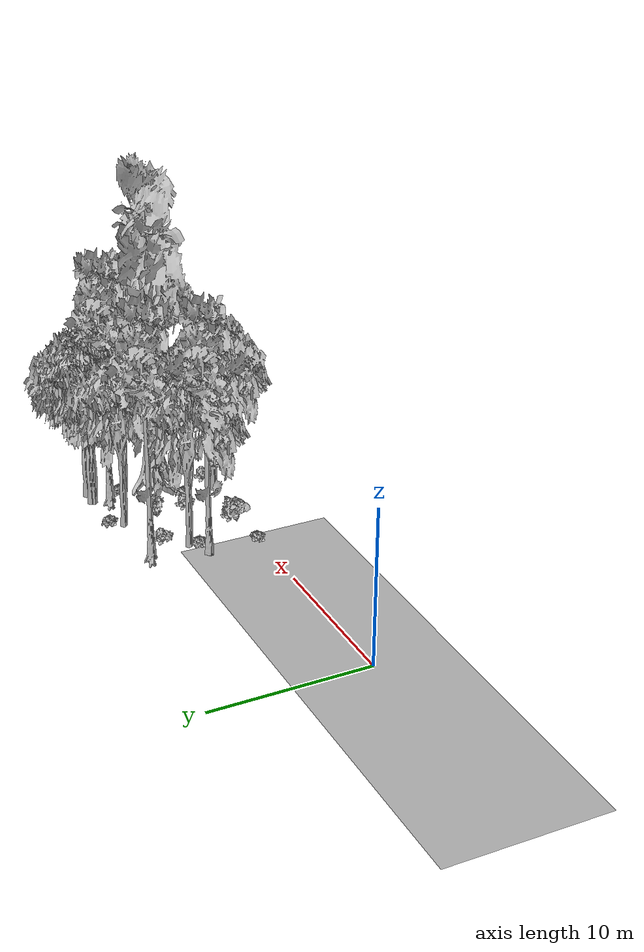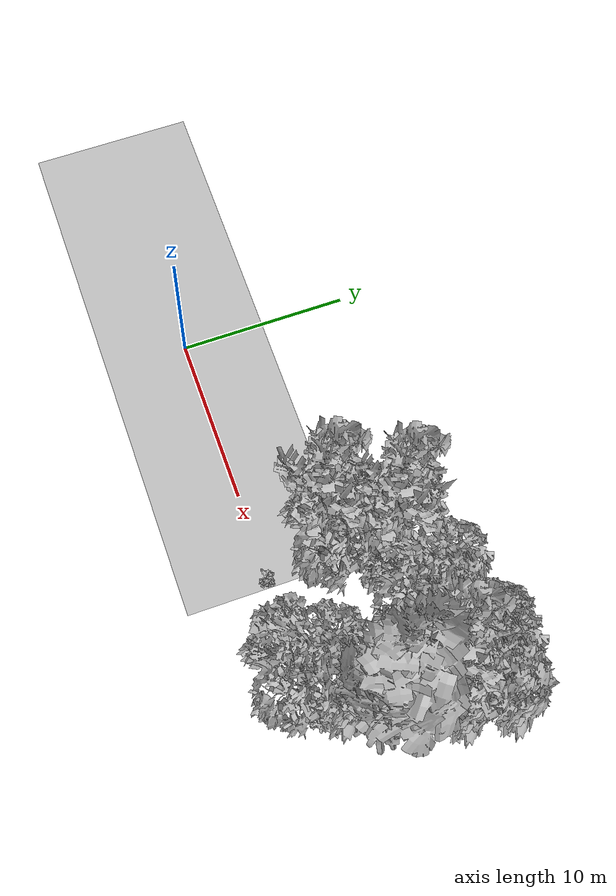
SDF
<sdf version="1.7">
 <world name="default">
  <model name="ground_plane">
   <static>1</static>
   <link name="link">
    <collision name="collision">
     <geometry><plane><normal>0 0 1</normal><size>100 100</size></plane></geometry>
     <surface><contact><ode><min_depth>0.01</min_depth><max_vel>0</max_vel></ode></contact></surface>
    </collision>
    <visual name="grass">
     <cast_shadows>0</cast_shadows>
     <geometry>
      <mesh>
       <scale>0.5814285714285714 0.18142857142857144 0.1</scale>
       <uri>file://grass_plane/meshes/grass_plane.dae</uri>
      </mesh>
     </geometry>
    </visual>
   </link>
  </model>
  <model name="Tree 26">
   <static>1</static>
   <pose>14.767270386368914 3.3967840840657146 0 1.57079 -0 0</pose>
   <link name="link">
    <collision name="collision">
     <geometry><mesh><scale>3.5 5 3.5</scale><uri>model://tree_9/meshes/tree_9.obj</uri></mesh></geometry>
    </collision>
    <visual name="visual">
     <geometry><mesh><scale>3.5 5 3.5</scale><uri>model://tree_9/meshes/tree_9.obj</uri></mesh></geometry>
    </visual>
   </link>
  </model>
  <model name="Tree 77">
   <static>1</static>
   <pose>16.134451558894625 6.639934069329669 0 1.57079 -0 0</pose>
   <link name="link">
    <collision name="collision">
     <geometry><mesh><scale>3.5 5 3.5</scale><uri>model://tree_9/meshes/tree_9.obj</uri></mesh></geometry>
    </collision>
    <visual name="visual">
     <geometry><mesh><scale>3.5 5 3.5</scale><uri>model://tree_9/meshes/tree_9.obj</uri></mesh></geometry>
    </visual>
   </link>
  </model>
  <model name="Tree 146">
   <static>1</static>
   <pose>23.800714505289278 6.454567991375427 0 1.57079 -0 0</pose>
   <link name="link">
    <collision name="collision">
     <geometry><mesh><scale>3.5 5 3.5</scale><uri>model://tree_9/meshes/tree_9.obj</uri></mesh></geometry>
    </collision>
    <visual name="visual">
     <geometry><mesh><scale>3.5 5 3.5</scale><uri>model://tree_9/meshes/tree_9.obj</uri></mesh></geometry>
    </visual>
   </link>
  </model>
  <model name="Tree 168">
   <static>1</static>
   <pose>22.00422431425727 -0.09050226162383801 0 1.57079 -0 0</pose>
   <link name="link">
    <collision name="collision">
     <geometry><mesh><scale>3.5 5 3.5</scale><uri>model://tree_2/meshes/tree_2.obj</uri></mesh></geometry>
    </collision>
    <visual name="visual">
     <geometry><mesh><scale>3.5 5 3.5</scale><uri>model://tree_2/meshes/tree_2.obj</uri></mesh></geometry>
    </visual>
   </link>
  </model>
  <model name="Tree 173">
   <static>1</static>
   <pose>20.04253823778268 6.875947119614427 0 1.57079 -0 0</pose>
   <link name="link">
    <collision name="collision">
     <geometry><mesh><scale>3.5 5 3.5</scale><uri>model://tree_2/meshes/tree_2.obj</uri></mesh></geometry>
    </collision>
    <visual name="visual">
     <geometry><mesh><scale>3.5 5 3.5</scale><uri>model://tree_2/meshes/tree_2.obj</uri></mesh></geometry>
    </visual>
   </link>
  </model>
  <model name="Tree 195">
   <static>1</static>
   <pose>23.5751971295752 7.575776021164746 0 1.57079 -0 0</pose>
   <link name="link">
    <collision name="collision">
     <geometry><mesh><scale>3.5 5 3.5</scale><uri>model://tree_2/meshes/tree_2.obj</uri></mesh></geometry>
    </collision>
    <visual name="visual">
     <geometry><mesh><scale>3.5 5 3.5</scale><uri>model://tree_2/meshes/tree_2.obj</uri></mesh></geometry>
    </visual>
   </link>
  </model>
  <model name="Tree 202">
   <static>1</static>
   <pose>15.995405987543492 4.152246791756227 0 1.57079 -0 0</pose>
   <link name="link">
    <collision name="collision">
     <geometry><mesh><scale>3.5 5 3.5</scale><uri>model://tree_2/meshes/tree_2.obj</uri></mesh></geometry>
    </collision>
    <visual name="visual">
     <geometry><mesh><scale>3.5 5 3.5</scale><uri>model://tree_2/meshes/tree_2.obj</uri></mesh></geometry>
    </visual>
   </link>
  </model>
  <model name="Tree 252">
   <static>1</static>
   <pose>24.118869296567027 5.315272429371337 0 1.57079 -0 0</pose>
   <link name="link">
    <collision name="collision">
     <geometry><mesh><scale>3.5 5 3.5</scale><uri>model://tree_2/meshes/tree_2.obj</uri></mesh></geometry>
    </collision>
    <visual name="visual">
     <geometry><mesh><scale>3.5 5 3.5</scale><uri>model://tree_2/meshes/tree_2.obj</uri></mesh></geometry>
    </visual>
   </link>
  </model>
  <model name="Tree 275">
   <static>1</static>
   <pose>24.627454609023857 7.707528272136287 0 1.57079 -0 0</pose>
   <link name="link">
    <collision name="collision">
     <geometry><mesh><scale>3.5 5 3.5</scale><uri>model://tree_2/meshes/tree_2.obj</uri></mesh></geometry>
    </collision>
    <visual name="visual">
     <geometry><mesh><scale>3.5 5 3.5</scale><uri>model://tree_2/meshes/tree_2.obj</uri></mesh></geometry>
    </visual>
   </link>
  </model>
  <model name="Tree 288">
   <static>1</static>
   <pose>24.76924334572864 3.0639531141417926 0 1.57079 -0 0</pose>
   <link name="link">
    <collision name="collision">
     <geometry><mesh><scale>3.5 5 3.5</scale><uri>model://tree_4/meshes/tree_4.obj</uri></mesh></geometry>
    </collision>
    <visual name="visual">
     <geometry><mesh><scale>3.5 5 3.5</scale><uri>model://tree_4/meshes/tree_4.obj</uri></mesh></geometry>
    </visual>
   </link>
  </model>
  <model name="Tree 291">
   <static>1</static>
   <pose>23.64362441759893 7.769937301556958 0 1.57079 -0 0</pose>
   <link name="link">
    <collision name="collision">
     <geometry><mesh><scale>3.5 5 3.5</scale><uri>model://tree_2/meshes/tree_2.obj</uri></mesh></geometry>
    </collision>
    <visual name="visual">
     <geometry><mesh><scale>3.5 5 3.5</scale><uri>model://tree_2/meshes/tree_2.obj</uri></mesh></geometry>
    </visual>
   </link>
  </model>
  <model name="Bush 39">
   <static>1</static>
   <pose>22.375363576232616 1.8994104753850394 0 1.57079 -0 0</pose>
   <link name="link">
    <collision name="collision">
     <geometry><mesh><scale>2 2 2</scale><uri>model://bush_2/meshes/bush_2.obj</uri></mesh></geometry>
     <surface><contact><collide_without_contact>false</collide_without_contact></contact></surface>
    </collision>
    <visual name="visual">
     <geometry><mesh><scale>2 2 2</scale><uri>model://bush_2/meshes/bush_2.obj</uri></mesh></geometry>
    </visual>
   </link>
  </model>
  <model name="Bush 54">
   <static>1</static>
   <pose>24.42218702277829 5.6104059997077655 0 1.57079 -0 0</pose>
   <link name="link">
    <collision name="collision">
     <geometry><mesh><scale>2 2 2</scale><uri>model://bush_2/meshes/bush_2.obj</uri></mesh></geometry>
     <surface><contact><collide_without_contact>false</collide_without_contact></contact></surface>
    </collision>
    <visual name="visual">
     <geometry><mesh><scale>2 2 2</scale><uri>model://bush_2/meshes/bush_2.obj</uri></mesh></geometry>
    </visual>
   </link>
  </model>
  <model name="Bush 77">
   <static>1</static>
   <pose>23.606852038686753 0.09199043325188327 0 1.57079 -0 0</pose>
   <link name="link">
    <collision name="collision">
     <geometry><mesh><scale>2 2 2</scale><uri>model://bush_3/meshes/bush_3.obj</uri></mesh></geometry>
     <surface><contact><collide_without_contact>false</collide_without_contact></contact></surface>
    </collision>
    <visual name="visual">
     <geometry><mesh><scale>2 2 2</scale><uri>model://bush_3/meshes/bush_3.obj</uri></mesh></geometry>
    </visual>
   </link>
  </model>
  <model name="Bush 79">
   <static>1</static>
   <pose>16.106413278773815 3.4109626032904004 0 1.57079 -0 0</pose>
   <link name="link">
    <collision name="collision">
     <geometry><mesh><scale>2 2 2</scale><uri>model://bush_2/meshes/bush_2.obj</uri></mesh></geometry>
     <surface><contact><collide_without_contact>false</collide_without_contact></contact></surface>
    </collision>
    <visual name="visual">
     <geometry><mesh><scale>2 2 2</scale><uri>model://bush_2/meshes/bush_2.obj</uri></mesh></geometry>
    </visual>
   </link>
  </model>
  <model name="Bush 100">
   <static>1</static>
   <pose>17.255919510659396 5.485347783411175 0 1.57079 -0 0</pose>
   <link name="link">
    <collision name="collision">
     <geometry><mesh><scale>2 2 2</scale><uri>model://bush_3/meshes/bush_3.obj</uri></mesh></geometry>
     <surface><contact><collide_without_contact>false</collide_without_contact></contact></surface>
    </collision>
    <visual name="visual">
     <geometry><mesh><scale>2 2 2</scale><uri>model://bush_3/meshes/bush_3.obj</uri></mesh></geometry>
    </visual>
   </link>
  </model>
  <model name="Bush 149">
   <static>1</static>
   <pose>18.06872699756228 0.5532258088291471 0 1.57079 -0 0</pose>
   <link name="link">
    <collision name="collision">
     <geometry><mesh><scale>2 2 2</scale><uri>model://bush_3/meshes/bush_3.obj</uri></mesh></geometry>
     <surface><contact><collide_without_contact>false</collide_without_contact></contact></surface>
    </collision>
    <visual name="visual">
     <geometry><mesh><scale>2 2 2</scale><uri>model://bush_3/meshes/bush_3.obj</uri></mesh></geometry>
    </visual>
   </link>
  </model>
  <model name="Bush 198">
   <static>1</static>
   <pose>20.669997055195267 2.5949035516163867 0 1.57079 -0 0</pose>
   <link name="link">
    <collision name="collision">
     <geometry><mesh><scale>2 2 2</scale><uri>model://bush_3/meshes/bush_3.obj</uri></mesh></geometry>
     <surface><contact><collide_without_contact>false</collide_without_contact></contact></surface>
    </collision>
    <visual name="visual">
     <geometry><mesh><scale>2 2 2</scale><uri>model://bush_3/meshes/bush_3.obj</uri></mesh></geometry>
    </visual>
   </link>
  </model>
  <model name="Bush 232">
   <static>1</static>
   <pose>20.882586005916906 7.523321259953885 0 1.57079 -0 0</pose>
   <link name="link">
    <collision name="collision">
     <geometry><mesh><scale>2 2 2</scale><uri>model://bush_2/meshes/bush_2.obj</uri></mesh></geometry>
     <surface><contact><collide_without_contact>false</collide_without_contact></contact></surface>
    </collision>
    <visual name="visual">
     <geometry><mesh><scale>2 2 2</scale><uri>model://bush_2/meshes/bush_2.obj</uri></mesh></geometry>
    </visual>
   </link>
  </model>
  <model name="Bush 254">
   <static>1</static>
   <pose>17.61956304901608 0.26633727822493647 0 1.57079 -0 0</pose>
   <link name="link">
    <collision name="collision">
     <geometry><mesh><scale>2 2 2</scale><uri>model://bush_1/meshes/bush_1.obj</uri></mesh></geometry>
     <surface><contact><collide_without_contact>false</collide_without_contact></contact></surface>
    </collision>
    <visual name="visual">
     <geometry><mesh><scale>2 2 2</scale><uri>model://bush_1/meshes/bush_1.obj</uri></mesh></geometry>
    </visual>
   </link>
  </model>
  <model name="Bush 286">
   <static>1</static>
   <pose>20.459214390022524 4.584621569428489 0 1.57079 -0 0</pose>
   <link name="link">
    <collision name="collision">
     <geometry><mesh><scale>2 2 2</scale><uri>model://bush_4/meshes/bush_4.obj</uri></mesh></geometry>
     <surface><contact><collide_without_contact>false</collide_without_contact></contact></surface>
    </collision>
    <visual name="visual">
     <geometry><mesh><scale>2 2 2</scale><uri>model://bush_4/meshes/bush_4.obj</uri></mesh></geometry>
    </visual>
   </link>
  </model>
  <model name="Bush 306">
   <static>1</static>
   <pose>15.169058523286381 -0.06206145034406241 0 1.57079 -0 0</pose>
   <link name="link">
    <collision name="collision">
     <geometry><mesh><scale>2 2 2</scale><uri>model://bush_2/meshes/bush_2.obj</uri></mesh></geometry>
     <surface><contact><collide_without_contact>false</collide_without_contact></contact></surface>
    </collision>
    <visual name="visual">
     <geometry><mesh><scale>2 2 2</scale><uri>model://bush_2/meshes/bush_2.obj</uri></mesh></geometry>
    </visual>
   </link>
  </model>
 </world>
</sdf>
